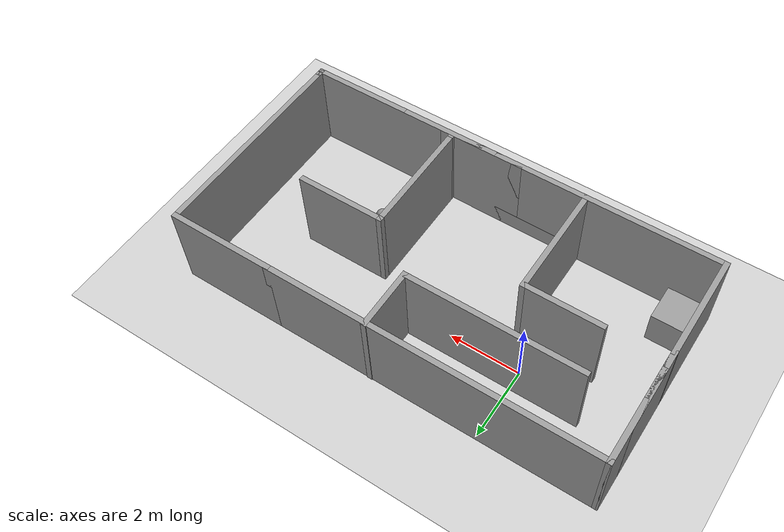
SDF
<sdf version="1.7">
 <world name="default">
  <light name="sun" type="directional">
   <pose>0 0 10 0 -0 0</pose>
   <diffuse>0.8 0.8 0.8 1</diffuse>
   <specular>0.2 0.2 0.2 1</specular>
   <attenuation>
    <range>1000</range>
    <constant>0.9</constant>
    <linear>0.01</linear>
    <quadratic>0.001</quadratic>
   </attenuation>
   <direction>-0.5 0.1 -0.9</direction>
   <spot><inner_angle>0</inner_angle><outer_angle>0</outer_angle><falloff>0</falloff></spot>
  </light>
  <model name="ground_plane">
   <static>1</static>
   <link name="link">
    <collision name="collision">
     <geometry><plane><normal>0 0 1</normal><size>100 100</size></plane></geometry>
     <surface><friction><ode><mu>100</mu><mu2>50</mu2></ode></friction></surface>
    </collision>
    <visual name="visual">
     <cast_shadows>0</cast_shadows>
     <geometry><plane><normal>0 0 1</normal><size>100 100</size></plane></geometry>
     <material>
      <script><uri>file://media/materials/scripts/gazebo.material</uri><name>Gazebo/Grey</name></script>
     </material>
    </visual>
   </link>
  </model>
  <gravity>0 0 -9.8</gravity>
  <magnetic_field>6e-06 2.3e-05 -4.2e-05</magnetic_field>
  <atmosphere type="adiabatic"/>
  <physics type="ode">
   <max_step_size>0.001</max_step_size>
   <real_time_factor>1</real_time_factor>
   <real_time_update_rate>1000</real_time_update_rate>
  </physics>
  <scene><ambient>0.4 0.4 0.4 1</ambient><background>0.7 0.7 0.7 1</background><shadows>1</shadows></scene>
  <audio><device>default</device></audio>
  <spherical_coordinates>
   <surface_model>EARTH_WGS84</surface_model>
   <latitude_deg>0</latitude_deg>
   <longitude_deg>0</longitude_deg>
   <elevation>0</elevation>
   <heading_deg>0</heading_deg>
  </spherical_coordinates>
  <model name="bzzroom">
   <pose>2.76444 -0.93605 0 0 -0 0</pose>
   <link name="Wall_0">
    <collision name="Wall_0_Collision">
     <geometry><box><size>3 0.15 2.5</size></box></geometry>
     <pose>0 0 1.25 0 -0 0</pose>
    </collision>
    <visual name="Wall_0_Visual">
     <pose>0 0 1.25 0 -0 0</pose>
     <geometry><box><size>3 0.15 2.5</size></box></geometry>
     <material>
      <script><uri>file://media/materials/scripts/gazebo.material</uri><name>Gazebo/Grey</name></script>
      <ambient>1 1 1 1</ambient>
     </material>
     <meta><layer>0</layer></meta>
    </visual>
    <pose>-5.97444 -1.55895 0 0 -0 -1.5708</pose>
   </link>
   <link name="Wall_1">
    <collision name="Wall_1_Collision">
     <geometry><box><size>9.25 0.15 2.5</size></box></geometry>
     <pose>0 0 1.25 0 -0 0</pose>
    </collision>
    <visual name="Wall_1_Visual">
     <pose>0 0 1.25 0 -0 0</pose>
     <geometry><box><size>9.25 0.15 2.5</size></box></geometry>
     <material>
      <script><uri>file://media/materials/scripts/gazebo.material</uri><name>Gazebo/Grey</name></script>
      <ambient>1 1 1 1</ambient>
     </material>
     <meta><layer>0</layer></meta>
    </visual>
    <pose>-1.42444 -2.98395 0 0 -0 0</pose>
   </link>
   <link name="Wall_10">
    <pose>-5.97444 1.41605 0 0 -0 1.5708</pose>
    <visual name="Wall_10_Visual_0">
     <pose>-1.35618 0 1.25 0 -0 0</pose>
     <geometry><box><size>0.537631 0.15 2.5</size></box></geometry>
     <material>
      <script><uri>file://media/materials/scripts/gazebo.material</uri><name>Gazebo/Grey</name></script>
      <ambient>1 1 1 1</ambient>
     </material>
     <meta><layer>0</layer></meta>
    </visual>
    <collision name="Wall_10_Collision_0">
     <geometry><box><size>0.537631 0.15 2.5</size></box></geometry>
     <pose>-1.35618 0 1.25 0 -0 0</pose>
    </collision>
    <visual name="Wall_10_Visual_1">
     <pose>0.718816 0 1.25 0 -0 0</pose>
     <geometry><box><size>1.81237 0.15 2.5</size></box></geometry>
     <material>
      <script><uri>file://media/materials/scripts/gazebo.material</uri><name>Gazebo/Grey</name></script>
      <ambient>1 1 1 1</ambient>
     </material>
     <meta><layer>0</layer></meta>
    </visual>
    <collision name="Wall_10_Collision_1">
     <geometry><box><size>1.81237 0.15 2.5</size></box></geometry>
     <pose>0.718816 0 1.25 0 -0 0</pose>
    </collision>
    <visual name="Wall_10_Visual_2">
     <pose>-0.637369 0 2.25 0 -0 0</pose>
     <geometry><box><size>0.9 0.15 0.5</size></box></geometry>
     <material>
      <script><uri>file://media/materials/scripts/gazebo.material</uri><name>Gazebo/Grey</name></script>
      <ambient>1 1 1 1</ambient>
     </material>
     <meta><layer>0</layer></meta>
    </visual>
    <collision name="Wall_10_Collision_2">
     <geometry><box><size>0.9 0.15 0.5</size></box></geometry>
     <pose>-0.637369 0 2.25 0 -0 0</pose>
    </collision>
   </link>
   <link name="Wall_11">
    <collision name="Wall_11_Collision">
     <geometry><box><size>9.25 0.15 2.5</size></box></geometry>
     <pose>0 0 1.25 0 -0 0</pose>
    </collision>
    <visual name="Wall_11_Visual">
     <pose>0 0 1.25 0 -0 0</pose>
     <geometry><box><size>9.25 0.15 2.5</size></box></geometry>
     <material>
      <script><uri>file://media/materials/scripts/gazebo.material</uri><name>Gazebo/Grey</name></script>
      <ambient>1 1 1 1</ambient>
     </material>
     <meta><layer>0</layer></meta>
    </visual>
    <pose>-1.42444 2.96605 0 0 -0 0</pose>
   </link>
   <link name="Wall_12">
    <collision name="Wall_12_Collision">
     <geometry><box><size>3 0.15 2.5</size></box></geometry>
     <pose>0 0 1.25 0 -0 0</pose>
    </collision>
    <visual name="Wall_12_Visual">
     <pose>0 0 1.25 0 -0 0</pose>
     <geometry><box><size>3 0.15 2.5</size></box></geometry>
     <material>
      <script><uri>file://media/materials/scripts/gazebo.material</uri><name>Gazebo/Grey</name></script>
      <ambient>1 1 1 1</ambient>
     </material>
     <meta><layer>0</layer></meta>
    </visual>
    <pose>4.55056 2.96605 0 0 -0 0</pose>
   </link>
   <link name="Wall_13">
    <collision name="Wall_13_Collision">
     <geometry><box><size>6 0.15 2.5</size></box></geometry>
     <pose>0 0 1.25 0 -0 0</pose>
    </collision>
    <visual name="Wall_13_Visual">
     <pose>0 0 1.25 0 -0 0</pose>
     <geometry><box><size>6 0.15 2.5</size></box></geometry>
     <material>
      <script><uri>file://media/materials/scripts/gazebo.material</uri><name>Gazebo/Grey</name></script>
      <ambient>1 1 1 1</ambient>
     </material>
     <meta><layer>0</layer></meta>
    </visual>
    <pose>5.97556 0.04105 0 0 -0 -1.5708</pose>
   </link>
   <link name="Wall_14">
    <collision name="Wall_14_Collision">
     <geometry><box><size>0.15 0.15 2.5</size></box></geometry>
     <pose>0 0 1.25 0 -0 0</pose>
    </collision>
    <visual name="Wall_14_Visual">
     <pose>0 0 1.25 0 -0 0</pose>
     <geometry><box><size>0.15 0.15 2.5</size></box></geometry>
     <material>
      <script><uri>file://media/materials/scripts/gazebo.material</uri><name>Gazebo/Grey</name></script>
      <ambient>1 1 1 1</ambient>
     </material>
     <meta><layer>0</layer></meta>
    </visual>
    <pose>5.97556 -2.88395 0 0 -0 0</pose>
   </link>
   <link name="Wall_15">
    <collision name="Wall_15_Collision">
     <geometry><box><size>0.15 0.15 2.5</size></box></geometry>
     <pose>0 0 1.25 0 -0 0</pose>
    </collision>
    <visual name="Wall_15_Visual">
     <pose>0 0 1.25 0 -0 0</pose>
     <geometry><box><size>0.15 0.15 2.5</size></box></geometry>
     <material>
      <script><uri>file://media/materials/scripts/gazebo.material</uri><name>Gazebo/Grey</name></script>
      <ambient>1 1 1 1</ambient>
     </material>
     <meta><layer>0</layer></meta>
    </visual>
    <pose>5.97556 -2.88395 0 0 -0 0</pose>
   </link>
   <link name="Wall_16">
    <collision name="Wall_16_Collision">
     <geometry><box><size>0.25 0.15 2.5</size></box></geometry>
     <pose>0 0 1.25 0 -0 0</pose>
    </collision>
    <visual name="Wall_16_Visual">
     <pose>0 0 1.25 0 -0 0</pose>
     <geometry><box><size>0.25 0.15 2.5</size></box></geometry>
     <material>
      <script><uri>file://media/materials/scripts/gazebo.material</uri><name>Gazebo/Grey</name></script>
      <ambient>1 1 1 1</ambient>
     </material>
     <meta><layer>0</layer></meta>
    </visual>
    <pose>5.97556 -2.93395 0 0 -0 -1.5708</pose>
   </link>
   <link name="Wall_17">
    <collision name="Wall_17_Collision">
     <geometry><box><size>4 0.15 2.5</size></box></geometry>
     <pose>0 0 1.25 0 -0 0</pose>
    </collision>
    <visual name="Wall_17_Visual">
     <pose>0 0 1.25 0 -0 0</pose>
     <geometry><box><size>4 0.15 2.5</size></box></geometry>
     <material>
      <script><uri>file://media/materials/scripts/gazebo.material</uri><name>Gazebo/Grey</name></script>
      <ambient>1 1 1 1</ambient>
     </material>
     <meta><layer>0</layer></meta>
    </visual>
    <pose>4.05056 -2.98395 0 0 -0 3.14159</pose>
   </link>
   <link name="Wall_18">
    <pose>-0.049437 -2.98395 0 0 -0 3.14159</pose>
    <visual name="Wall_18_Visual_0">
     <pose>-1.35048 0 1.25 0 -0 0</pose>
     <geometry><box><size>1.79905 0.15 2.5</size></box></geometry>
     <material>
      <script><uri>file://media/materials/scripts/gazebo.material</uri><name>Gazebo/Grey</name></script>
      <ambient>1 1 1 1</ambient>
     </material>
     <meta><layer>0</layer></meta>
    </visual>
    <collision name="Wall_18_Collision_0">
     <geometry><box><size>1.79905 0.15 2.5</size></box></geometry>
     <pose>-1.35048 0 1.25 0 -0 0</pose>
    </collision>
    <visual name="Wall_18_Visual_1">
     <pose>0.899525 0 0.25 0 -0 0</pose>
     <geometry><box><size>2.70095 0.15 0.5</size></box></geometry>
     <material>
      <script><uri>file://media/materials/scripts/gazebo.material</uri><name>Gazebo/Grey</name></script>
      <ambient>1 1 1 1</ambient>
     </material>
     <meta><layer>0</layer></meta>
    </visual>
    <collision name="Wall_18_Collision_1">
     <geometry><box><size>2.70095 0.15 0.5</size></box></geometry>
     <pose>0.899525 0 0.25 0 -0 0</pose>
    </collision>
    <visual name="Wall_18_Visual_2">
     <pose>1.29953 0 1.5 0 -0 0</pose>
     <geometry><box><size>1.90095 0.15 2</size></box></geometry>
     <material>
      <script><uri>file://media/materials/scripts/gazebo.material</uri><name>Gazebo/Grey</name></script>
      <ambient>1 1 1 1</ambient>
     </material>
     <meta><layer>0</layer></meta>
    </visual>
    <collision name="Wall_18_Collision_2">
     <geometry><box><size>1.90095 0.15 2</size></box></geometry>
     <pose>1.29953 0 1.5 0 -0 0</pose>
    </collision>
    <visual name="Wall_18_Visual_3">
     <pose>-0.05095 0 1.9 0 -0 0</pose>
     <geometry><box><size>0.8 0.15 1.2</size></box></geometry>
     <material>
      <script><uri>file://media/materials/scripts/gazebo.material</uri><name>Gazebo/Grey</name></script>
      <ambient>1 1 1 1</ambient>
     </material>
     <meta><layer>0</layer></meta>
    </visual>
    <collision name="Wall_18_Collision_3">
     <geometry><box><size>0.8 0.15 1.2</size></box></geometry>
     <pose>-0.05095 0 1.9 0 -0 0</pose>
    </collision>
   </link>
   <link name="Wall_19">
    <collision name="Wall_19_Collision">
     <geometry><box><size>3.25 0.15 2.5</size></box></geometry>
     <pose>0 0 1.25 0 -0 0</pose>
    </collision>
    <visual name="Wall_19_Visual">
     <pose>0 0 1.25 0 -0 0</pose>
     <geometry><box><size>3.25 0.15 2.5</size></box></geometry>
     <material>
      <script><uri>file://media/materials/scripts/gazebo.material</uri><name>Gazebo/Grey</name></script>
      <ambient>1 1 1 1</ambient>
     </material>
     <meta><layer>0</layer></meta>
    </visual>
    <pose>-2.22444 -1.43395 0 0 -0 1.5708</pose>
   </link>
   <link name="Wall_20">
    <collision name="Wall_20_Collision">
     <geometry><box><size>2.25 0.15 2.5</size></box></geometry>
     <pose>0 0 1.25 0 -0 0</pose>
    </collision>
    <visual name="Wall_20_Visual">
     <pose>0 0 1.25 0 -0 0</pose>
     <geometry><box><size>2.25 0.15 2.5</size></box></geometry>
     <material>
      <script><uri>file://media/materials/scripts/gazebo.material</uri><name>Gazebo/Grey</name></script>
      <ambient>1 1 1 1</ambient>
     </material>
     <meta><layer>0</layer></meta>
    </visual>
    <pose>-3.27444 0.11605 0 0 -0 3.14159</pose>
   </link>
   <link name="Wall_23">
    <collision name="Wall_23_Collision">
     <geometry><box><size>1.75 0.15 2.5</size></box></geometry>
     <pose>0 0 1.25 0 -0 0</pose>
    </collision>
    <visual name="Wall_23_Visual">
     <pose>0 0 1.25 0 -0 0</pose>
     <geometry><box><size>1.75 0.15 2.5</size></box></geometry>
     <material>
      <script><uri>file://media/materials/scripts/gazebo.material</uri><name>Gazebo/Grey</name></script>
      <ambient>1 1 1 1</ambient>
     </material>
     <meta><layer>0</layer></meta>
    </visual>
    <pose>0.275271 2.18395 0 0 -0 -1.5708</pose>
   </link>
   <link name="Wall_24">
    <collision name="Wall_24_Collision">
     <geometry><box><size>5 0.15 2.5</size></box></geometry>
     <pose>0 0 1.25 0 -0 0</pose>
    </collision>
    <visual name="Wall_24_Visual">
     <pose>0 0 1.25 0 -0 0</pose>
     <geometry><box><size>5 0.15 2.5</size></box></geometry>
     <material>
      <script><uri>file://media/materials/scripts/gazebo.material</uri><name>Gazebo/Grey</name></script>
      <ambient>1 1 1 1</ambient>
     </material>
     <meta><layer>0</layer></meta>
    </visual>
    <pose>-2.14973 1.38395 0 0 -0 3.14159</pose>
   </link>
   <link name="Wall_26">
    <collision name="Wall_26_Collision">
     <geometry><box><size>3.25 0.15 2.5</size></box></geometry>
     <pose>0 0 1.25 0 -0 0</pose>
    </collision>
    <visual name="Wall_26_Visual">
     <pose>0 0 1.25 0 -0 0</pose>
     <geometry><box><size>3.25 0.15 2.5</size></box></geometry>
     <material>
      <script><uri>file://media/materials/scripts/gazebo.material</uri><name>Gazebo/Grey</name></script>
      <ambient>1 1 1 1</ambient>
     </material>
     <meta><layer>0</layer></meta>
    </visual>
    <pose>1.70489 -1.21237 0 0 -0 -1.5708</pose>
   </link>
   <link name="Wall_29">
    <collision name="Wall_29_Collision">
     <geometry><box><size>0.25 0.15 2.5</size></box></geometry>
     <pose>0 0 1.25 0 -0 0</pose>
    </collision>
    <visual name="Wall_29_Visual">
     <pose>0 0 1.25 0 -0 0</pose>
     <geometry><box><size>0.25 0.15 2.5</size></box></geometry>
     <material>
      <script><uri>file://media/materials/scripts/gazebo.material</uri><name>Gazebo/Grey</name></script>
      <ambient>1 1 1 1</ambient>
     </material>
     <meta><layer>0</layer></meta>
    </visual>
    <pose>1.70489 -2.81237 0 0 -0 -1.5708</pose>
   </link>
   <link name="Wall_31">
    <collision name="Wall_31_Collision">
     <geometry><box><size>2.5 0.15 2.5</size></box></geometry>
     <pose>0 0 1.25 0 -0 0</pose>
    </collision>
    <visual name="Wall_31_Visual">
     <pose>0 0 1.25 0 -0 0</pose>
     <geometry><box><size>2.5 0.15 2.5</size></box></geometry>
     <material>
      <script><uri>file://media/materials/scripts/gazebo.material</uri><name>Gazebo/Grey</name></script>
      <ambient>1 1 1 1</ambient>
     </material>
     <meta><layer>0</layer></meta>
    </visual>
    <pose>2.87989 0.337628 0 0 -0 0</pose>
   </link>
   <link name="Wall_9">
    <collision name="Wall_9_Collision">
     <geometry><box><size>2.27933 0.15 2.5</size></box></geometry>
     <pose>0 0 1.25 0 -0 0</pose>
    </collision>
    <visual name="Wall_9_Visual">
     <pose>0 0 1.25 0 -0 0</pose>
     <geometry><box><size>2.27933 0.15 2.5</size></box></geometry>
     <material>
      <script><uri>file://media/materials/scripts/gazebo.material</uri><name>Gazebo/Grey</name></script>
      <ambient>1 1 1 1</ambient>
     </material>
     <meta><layer>0</layer></meta>
    </visual>
    <pose>-5.97498 0.930716 0 0 -0 -1.57028</pose>
   </link>
   <static>1</static>
  </model>
  <model name="unit_box">
   <pose>-2.635 -3.12953 0.5 0 0 -5e-06</pose>
   <link name="link">
    <inertial>
     <mass>1</mass>
     <inertia>
      <ixx>0.166667</ixx>
      <ixy>0</ixy>
      <ixz>0</ixz>
      <iyy>0.166667</iyy>
      <iyz>0</iyz>
      <izz>0.166667</izz>
     </inertia>
    </inertial>
    <collision name="collision"><geometry><box><size>1 1 1</size></box></geometry></collision>
    <visual name="visual">
     <geometry><box><size>1 1 1</size></box></geometry>
     <material>
      <script><name>Gazebo/Grey</name><uri>file://media/materials/scripts/gazebo.material</uri></script>
     </material>
    </visual>
   </link>
  </model>
  <model name="unit_sphere">
   <pose>5.59724 -2.13713 0.186604 0 -0 0</pose>
   <link name="link">
    <inertial>
     <mass>1</mass>
     <inertia><ixx>0.1</ixx><ixy>0</ixy><ixz>0</ixz><iyy>0.1</iyy><iyz>0</iyz><izz>0.1</izz></inertia>
    </inertial>
    <collision name="collision"><geometry><sphere><radius>0.186604</radius></sphere></geometry></collision>
    <visual name="visual">
     <geometry><sphere><radius>0.186604</radius></sphere></geometry>
     <material>
      <script><name>Gazebo/Grey</name><uri>file://media/materials/scripts/gazebo.material</uri></script>
     </material>
    </visual>
   </link>
  </model>
 </world>
</sdf>
